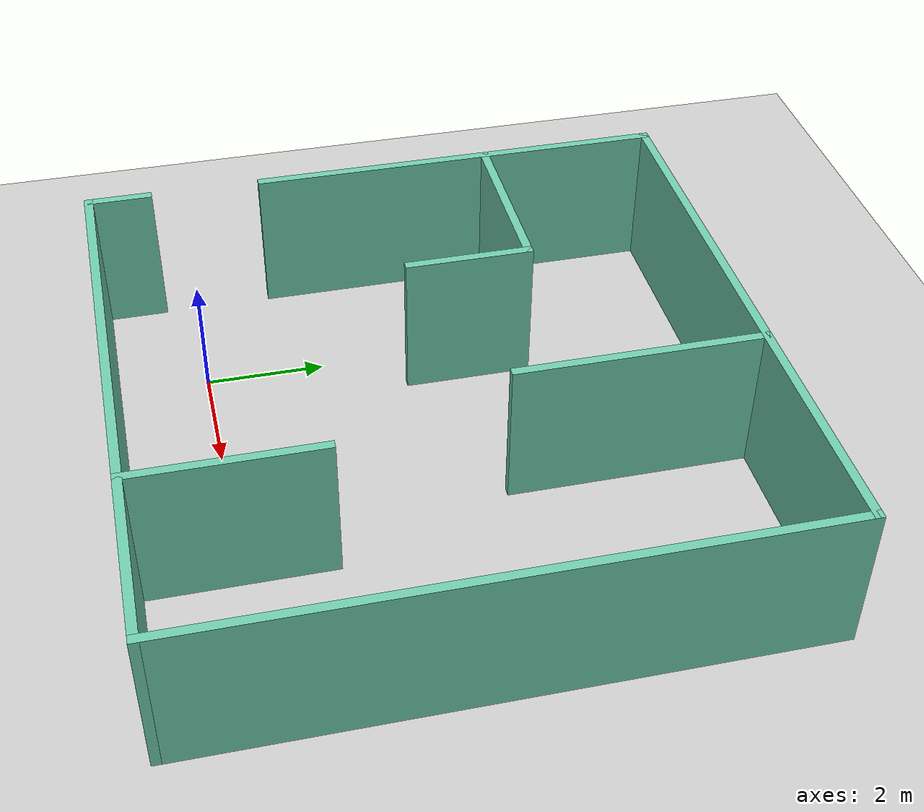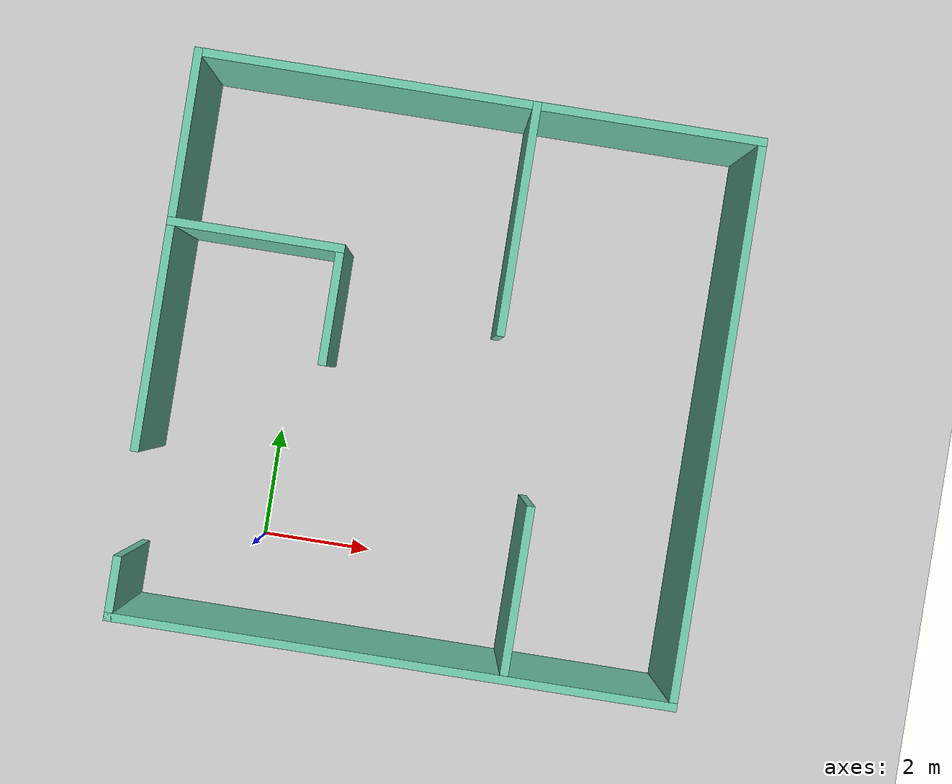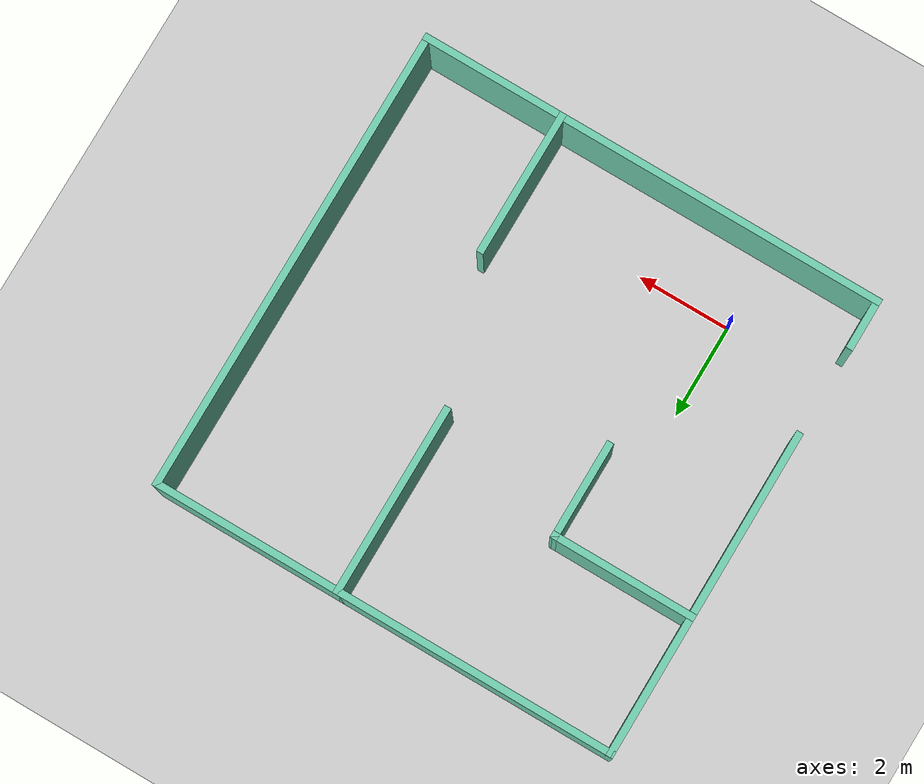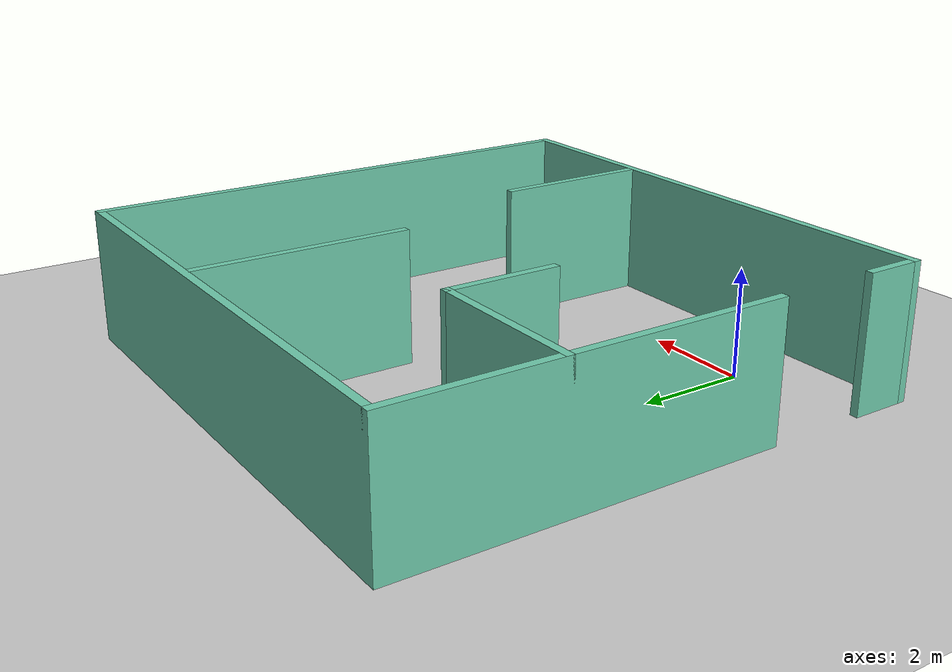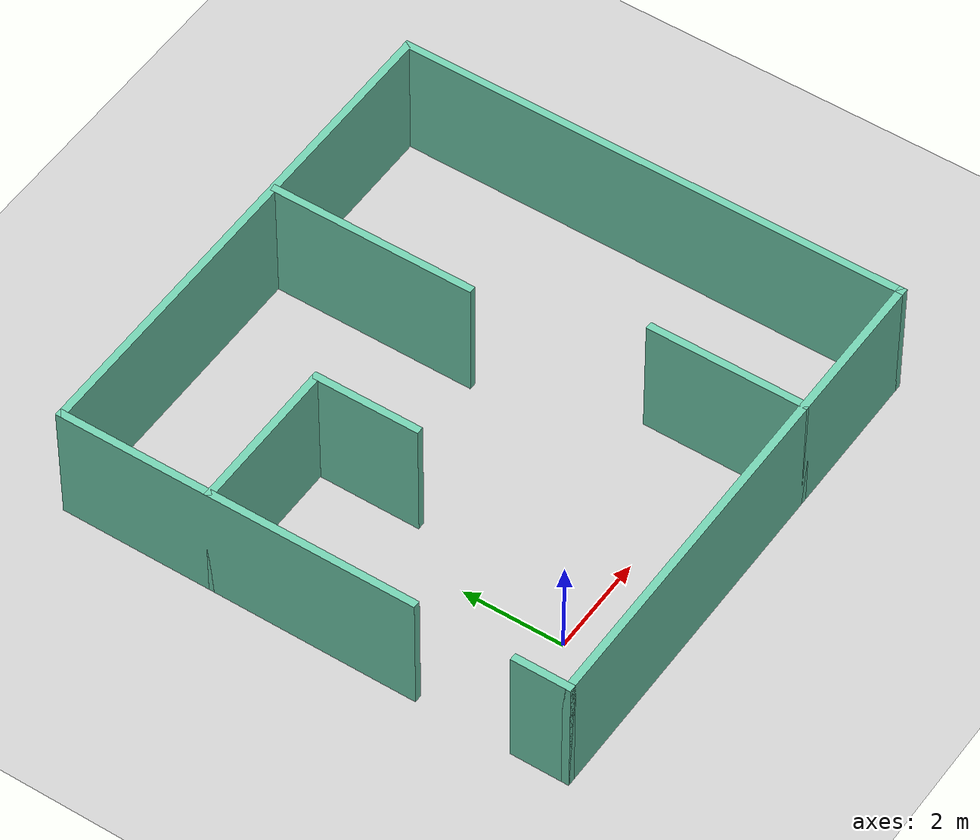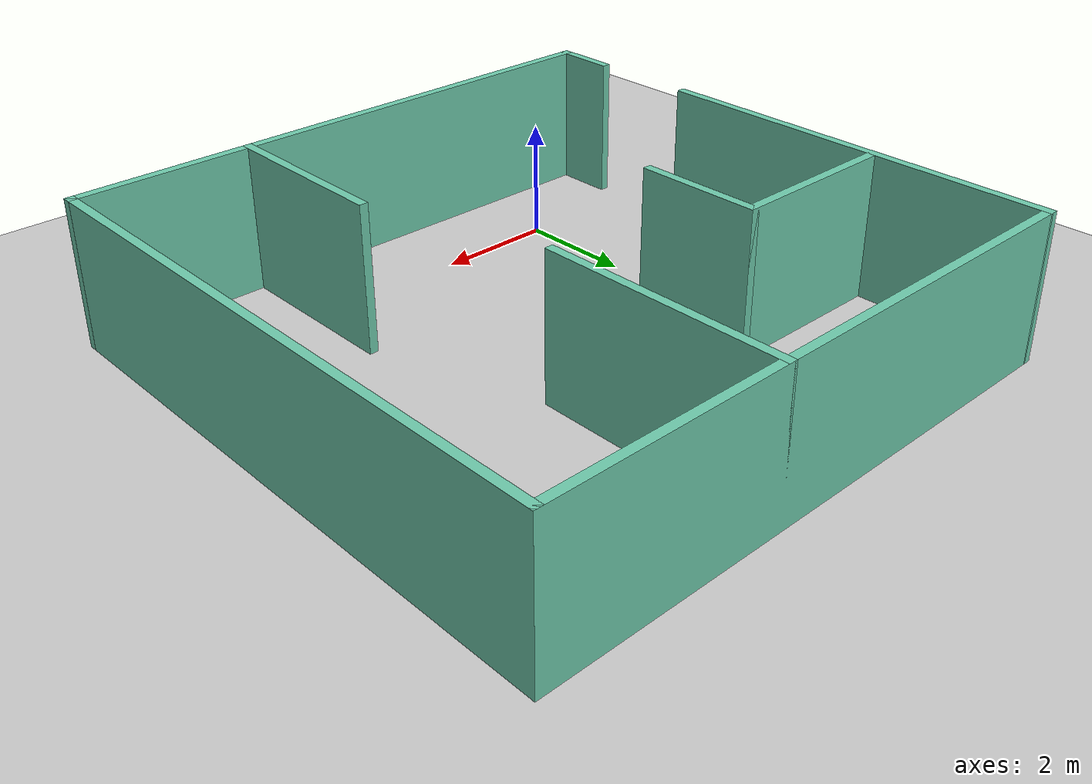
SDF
<sdf version="1.6">
 <world name="default">
  <light name="sun" type="directional">
   <pose>0 0 10 0 -0 0</pose>
   <diffuse>0.8 0.8 0.8 1</diffuse>
   <specular>0.2 0.2 0.2 1</specular>
   <attenuation>
    <range>1000</range>
    <constant>0.9</constant>
    <linear>0.01</linear>
    <quadratic>0.001</quadratic>
   </attenuation>
   <direction>-0.5 0.1 -0.9</direction>
  </light>
  <model name="ground_plane">
   <static>1</static>
   <link name="link">
    <collision name="collision">
     <geometry><plane><normal>0 0 1</normal><size>100 100</size></plane></geometry>
     <surface>
      <contact><collide_bitmask>65535</collide_bitmask></contact>
      <friction><ode><mu>100</mu><mu2>50</mu2></ode></friction>
     </surface>
    </collision>
    <visual name="visual">
     <cast_shadows>0</cast_shadows>
     <geometry><plane><normal>0 0 1</normal><size>100 100</size></plane></geometry>
     <material>
      <script><uri>file://media/materials/scripts/gazebo.material</uri><name>Gazebo/Grey</name></script>
     </material>
    </visual>
   </link>
  </model>
  <gravity>0 0 -9.8</gravity>
  <magnetic_field>6e-06 2.3e-05 -4.2e-05</magnetic_field>
  <atmosphere type="adiabatic"/>
  <physics name="default_physics" default="0" type="ode">
   <max_step_size>0.001</max_step_size>
   <real_time_factor>1</real_time_factor>
   <real_time_update_rate>1000</real_time_update_rate>
  </physics>
  <scene><ambient>0.4 0.4 0.4 1</ambient><background>0.7 0.7 0.7 1</background><shadows>1</shadows></scene>
  <audio><device>default</device></audio>
  <spherical_coordinates>
   <surface_model>EARTH_WGS84</surface_model>
   <latitude_deg>0</latitude_deg>
   <longitude_deg>0</longitude_deg>
   <elevation>0</elevation>
   <heading_deg>0</heading_deg>
  </spherical_coordinates>
  <model name="scholar_house">
   <pose>2.75644 3.42837 0 0 -0 0</pose>
   <link name="Wall_0">
    <collision name="Wall_0_Collision">
     <geometry><box><size>10.15 0.15 2.5</size></box></geometry>
     <pose>0 0 1.25 0 -0 0</pose>
    </collision>
    <visual name="Wall_0_Visual">
     <pose>0 0 1.25 0 -0 0</pose>
     <geometry><box><size>10.15 0.15 2.5</size></box></geometry>
     <material>
      <script><uri>file://media/materials/scripts/gazebo.material</uri><name>Gazebo/Grey</name></script>
      <ambient>0.435294 0.796078 0.67451 1</ambient>
     </material>
     <meta><layer>0</layer></meta>
    </visual>
    <pose>-0 -5 0 0 -0 0</pose>
   </link>
   <link name="Wall_10">
    <collision name="Wall_10_Collision">
     <geometry><box><size>3.15 0.15 2.5</size></box></geometry>
     <pose>0 0 1.25 0 -0 0</pose>
    </collision>
    <visual name="Wall_10_Visual">
     <pose>0 0 1.25 0 -0 0</pose>
     <geometry><box><size>3.15 0.15 2.5</size></box></geometry>
     <material>
      <script><uri>file://media/materials/scripts/gazebo.material</uri><name>Gazebo/Grey</name></script>
      <ambient>0.435294 0.796078 0.67451 1</ambient>
     </material>
     <meta><layer>0</layer></meta>
    </visual>
    <pose>-3.5 2 0 0 -0 0</pose>
   </link>
   <link name="Wall_12">
    <collision name="Wall_12_Collision">
     <geometry><box><size>2.15 0.15 2.5</size></box></geometry>
     <pose>0 0 1.25 0 -0 0</pose>
    </collision>
    <visual name="Wall_12_Visual">
     <pose>0 0 1.25 0 -0 0</pose>
     <geometry><box><size>2.15 0.15 2.5</size></box></geometry>
     <material>
      <script><uri>file://media/materials/scripts/gazebo.material</uri><name>Gazebo/Grey</name></script>
      <ambient>0.435294 0.796078 0.67451 1</ambient>
     </material>
     <meta><layer>0</layer></meta>
    </visual>
    <pose>-2 1 0 0 -0 -1.5708</pose>
   </link>
   <link name="Wall_14">
    <collision name="Wall_14_Collision">
     <geometry><box><size>3.15 0.15 2.5</size></box></geometry>
     <pose>0 0 1.25 0 -0 0</pose>
    </collision>
    <visual name="Wall_14_Visual">
     <pose>0 0 1.25 0 -0 0</pose>
     <geometry><box><size>3.15 0.15 2.5</size></box></geometry>
     <material>
      <script><uri>file://media/materials/scripts/gazebo.material</uri><name>Gazebo/Grey</name></script>
      <ambient>0.435294 0.796078 0.67451 1</ambient>
     </material>
     <meta><layer>0</layer></meta>
    </visual>
    <pose>2 -3.5 0 0 -0 1.5708</pose>
   </link>
   <link name="Wall_16">
    <collision name="Wall_16_Collision">
     <geometry><box><size>4.15 0.15 2.5</size></box></geometry>
     <pose>0 0 1.25 0 -0 0</pose>
    </collision>
    <visual name="Wall_16_Visual">
     <pose>0 0 1.25 0 -0 0</pose>
     <geometry><box><size>4.15 0.15 2.5</size></box></geometry>
     <material>
      <script><uri>file://media/materials/scripts/gazebo.material</uri><name>Gazebo/Grey</name></script>
      <ambient>0.435294 0.796078 0.67451 1</ambient>
     </material>
     <meta><layer>0</layer></meta>
    </visual>
    <pose>1 3 0 0 -0 -1.5708</pose>
   </link>
   <link name="Wall_2">
    <collision name="Wall_2_Collision">
     <geometry><box><size>1.15 0.15 2.5</size></box></geometry>
     <pose>0 0 1.25 0 -0 0</pose>
    </collision>
    <visual name="Wall_2_Visual">
     <pose>0 0 1.25 0 -0 0</pose>
     <geometry><box><size>1.15 0.15 2.5</size></box></geometry>
     <material>
      <script><uri>file://media/materials/scripts/gazebo.material</uri><name>Gazebo/Grey</name></script>
      <ambient>0.435294 0.796078 0.67451 1</ambient>
     </material>
     <meta><layer>0</layer></meta>
    </visual>
    <pose>-5 -4.5 0 0 -0 1.5708</pose>
   </link>
   <link name="Wall_4">
    <collision name="Wall_4_Collision">
     <geometry><box><size>7.15 0.15 2.5</size></box></geometry>
     <pose>0 0 1.25 0 -0 0</pose>
    </collision>
    <visual name="Wall_4_Visual">
     <pose>0 0 1.25 0 -0 0</pose>
     <geometry><box><size>7.15 0.15 2.5</size></box></geometry>
     <material>
      <script><uri>file://media/materials/scripts/gazebo.material</uri><name>Gazebo/Grey</name></script>
      <ambient>0.435294 0.796078 0.67451 1</ambient>
     </material>
     <meta><layer>0</layer></meta>
    </visual>
    <pose>-5 1.5 0 0 -0 1.5708</pose>
   </link>
   <link name="Wall_6">
    <collision name="Wall_6_Collision">
     <geometry><box><size>10.15 0.15 2.5</size></box></geometry>
     <pose>0 0 1.25 0 -0 0</pose>
    </collision>
    <visual name="Wall_6_Visual">
     <pose>0 0 1.25 0 -0 0</pose>
     <geometry><box><size>10.15 0.15 2.5</size></box></geometry>
     <material>
      <script><uri>file://media/materials/scripts/gazebo.material</uri><name>Gazebo/Grey</name></script>
      <ambient>0.435294 0.796078 0.67451 1</ambient>
     </material>
     <meta><layer>0</layer></meta>
    </visual>
    <pose>-0 5 0 0 -0 0</pose>
   </link>
   <link name="Wall_8">
    <collision name="Wall_8_Collision">
     <geometry><box><size>10.15 0.15 2.5</size></box></geometry>
     <pose>0 0 1.25 0 -0 0</pose>
    </collision>
    <visual name="Wall_8_Visual">
     <pose>0 0 1.25 0 -0 0</pose>
     <geometry><box><size>10.15 0.15 2.5</size></box></geometry>
     <material>
      <script><uri>file://media/materials/scripts/gazebo.material</uri><name>Gazebo/Grey</name></script>
      <ambient>0.435294 0.796078 0.67451 1</ambient>
     </material>
     <meta><layer>0</layer></meta>
    </visual>
    <pose>5 -0 0 0 -0 -1.5708</pose>
   </link>
   <static>1</static>
  </model>
 </world>
</sdf>
